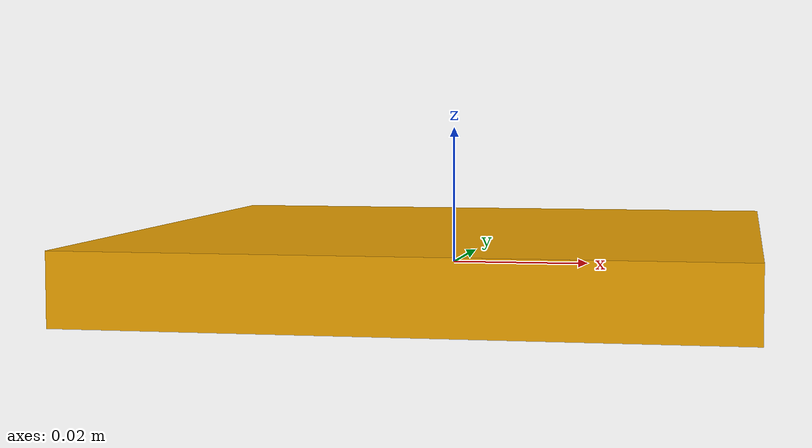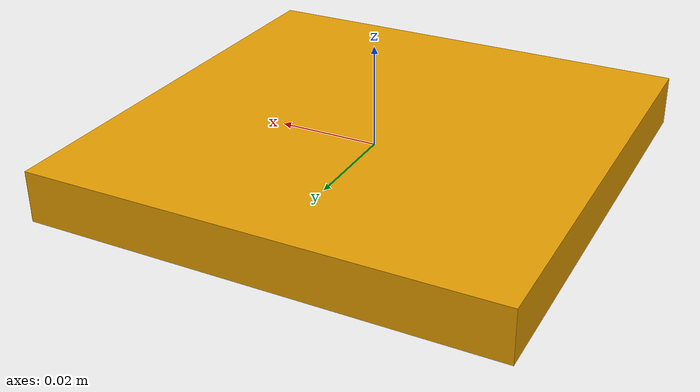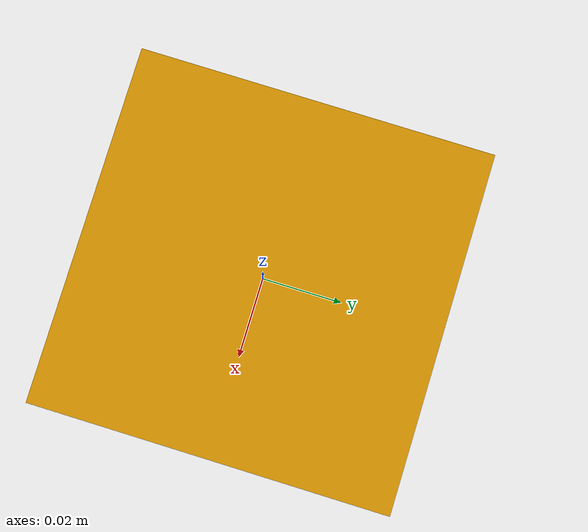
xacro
<?xml version="1.0" encoding="utf-8"?>
<robot xmlns:xacro="http://www.ros.org/wiki/xacro" name="tag">
    <link name="box_tag">
        <inertial>
            <origin xyz="0 0 0" rpy="1.571 0 0 "/>
            <mass value="1.0"/>
            <inertia ixx="0.0741666666"  ixy="0.0"  ixz="0.0" iyy="0.0585461666" iyz="0.0" izz="0.02604166666" />
        </inertial>
        <collision>
            <origin xyz="0.0 0.0 0.0" rpy="0.0 0.0 0.0"/>
            <geometry>
                <box size="0.2 0.2 0.2"/>
            </geometry>
        </collision>
        <visual>
            <origin xyz="0.0 0.0 0.0" rpy="0.0 0.0 0.0"/>
            <geometry>
                <mesh filename="package://manipulator_description/meshes/tag.dae"/>
            </geometry>
        </visual>
    </link>

        <gazebo reference="box_tag">
            <kp>100000.0</kp>
            <kd>100000.0</kd>
            <mu1>0.1</mu1>
            <mu2>0.1</mu2>
            <fdir1>1 0 0</fdir1>
        </gazebo>

</robot>
